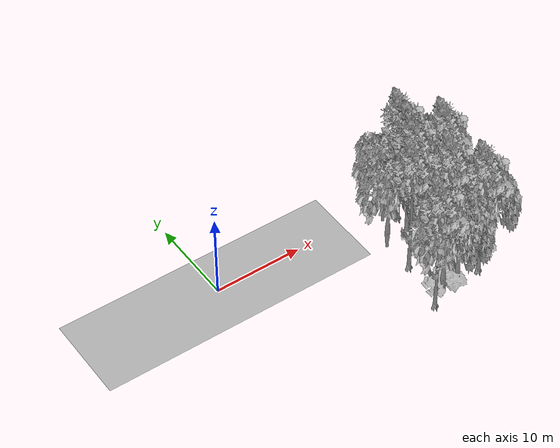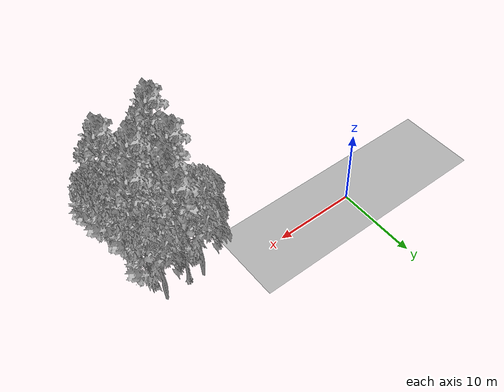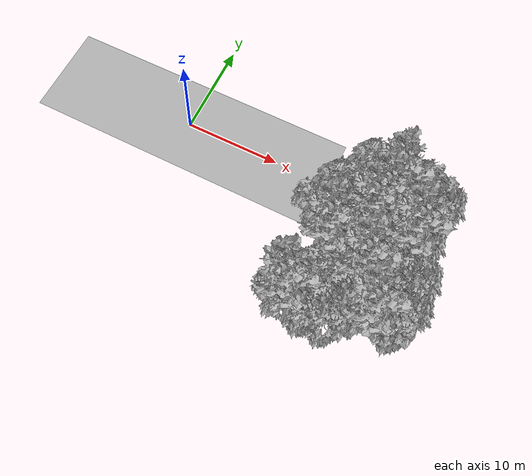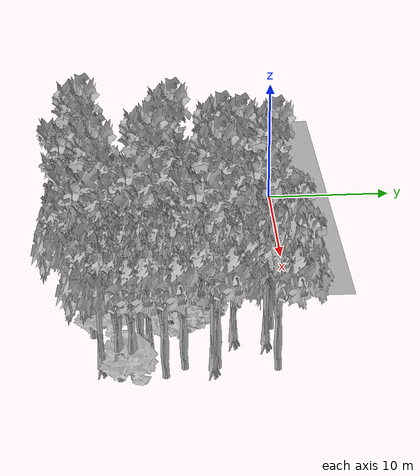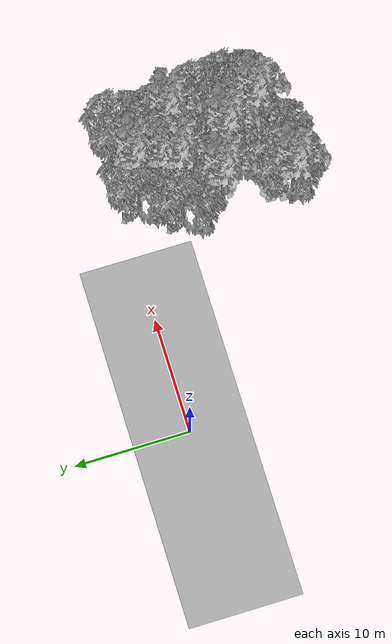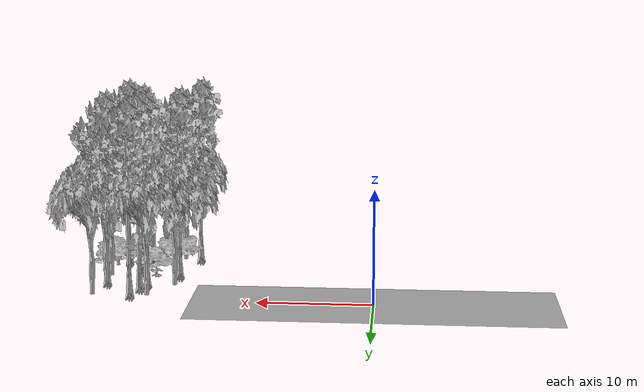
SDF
<sdf version="1.7">
 <world name="default">
  <model name="ground_plane">
   <static>1</static>
   <link name="link">
    <collision name="collision">
     <pose>-50 0 0 0 -0 0</pose>
     <geometry><plane><normal>0 0 1</normal><size>100 100</size></plane></geometry>
     <surface><contact><ode><min_depth>0.01</min_depth><max_vel>0</max_vel></ode></contact></surface>
    </collision>
    <visual name="grass">
     <cast_shadows>0</cast_shadows>
     <geometry>
      <mesh>
       <scale>0.5814285714285714 0.18142857142857144 0.1</scale>
       <uri>file://grass_plane/meshes/grass_plane.dae</uri>
      </mesh>
     </geometry>
    </visual>
   </link>
  </model>
  <model name="Tree 5">
   <static>1</static>
   <pose>19.629208823579546 -1.654639189703154 0 1.57079 -0 0</pose>
   <link name="link">
    <collision name="collision">
     <geometry><mesh><scale>3.5 5 3.5</scale><uri>model://tree_2/meshes/tree_2.obj</uri></mesh></geometry>
    </collision>
    <visual name="visual">
     <geometry><mesh><scale>3.5 5 3.5</scale><uri>model://tree_2/meshes/tree_2.obj</uri></mesh></geometry>
    </visual>
   </link>
  </model>
  <model name="Tree 31">
   <static>1</static>
   <pose>24.900806616224116 -10.793923267823647 0 1.57079 -0 0</pose>
   <link name="link">
    <collision name="collision">
     <geometry><mesh><scale>3.5 5 3.5</scale><uri>model://tree_2/meshes/tree_2.obj</uri></mesh></geometry>
    </collision>
    <visual name="visual">
     <geometry><mesh><scale>3.5 5 3.5</scale><uri>model://tree_2/meshes/tree_2.obj</uri></mesh></geometry>
    </visual>
   </link>
  </model>
  <model name="Tree 41">
   <static>1</static>
   <pose>17.710650653745134 -4.923292377429361 0 1.57079 -0 0</pose>
   <link name="link">
    <collision name="collision">
     <geometry><mesh><scale>3.5 5 3.5</scale><uri>model://tree_2/meshes/tree_2.obj</uri></mesh></geometry>
    </collision>
    <visual name="visual">
     <geometry><mesh><scale>3.5 5 3.5</scale><uri>model://tree_2/meshes/tree_2.obj</uri></mesh></geometry>
    </visual>
   </link>
  </model>
  <model name="Tree 59">
   <static>1</static>
   <pose>18.83686792946277 -13.19572756280619 0 1.57079 -0 0</pose>
   <link name="link">
    <collision name="collision">
     <geometry><mesh><scale>3 2 3</scale><uri>model://tree_3/meshes/tree_3.obj</uri></mesh></geometry>
    </collision>
    <visual name="visual">
     <geometry><mesh><scale>3 2 3</scale><uri>model://tree_3/meshes/tree_3.obj</uri></mesh></geometry>
    </visual>
   </link>
  </model>
  <model name="Tree 142">
   <static>1</static>
   <pose>23.475615986553436 -12.893833826158735 0 1.57079 -0 0</pose>
   <link name="link">
    <collision name="collision">
     <geometry><mesh><scale>3.5 5 3.5</scale><uri>model://tree_9/meshes/tree_9.obj</uri></mesh></geometry>
    </collision>
    <visual name="visual">
     <geometry><mesh><scale>3.5 5 3.5</scale><uri>model://tree_9/meshes/tree_9.obj</uri></mesh></geometry>
    </visual>
   </link>
  </model>
  <model name="Tree 145">
   <static>1</static>
   <pose>24.969309721218835 -11.660806364751668 0 1.57079 -0 0</pose>
   <link name="link">
    <collision name="collision">
     <geometry><mesh><scale>3.5 5 3.5</scale><uri>model://tree_2/meshes/tree_2.obj</uri></mesh></geometry>
    </collision>
    <visual name="visual">
     <geometry><mesh><scale>3.5 5 3.5</scale><uri>model://tree_2/meshes/tree_2.obj</uri></mesh></geometry>
    </visual>
   </link>
  </model>
  <model name="Tree 159">
   <static>1</static>
   <pose>17.929809894789088 -8.438546562303996 0 1.57079 -0 0</pose>
   <link name="link">
    <collision name="collision">
     <geometry><mesh><scale>3.5 5 3.5</scale><uri>model://tree_9/meshes/tree_9.obj</uri></mesh></geometry>
    </collision>
    <visual name="visual">
     <geometry><mesh><scale>3.5 5 3.5</scale><uri>model://tree_9/meshes/tree_9.obj</uri></mesh></geometry>
    </visual>
   </link>
  </model>
  <model name="Tree 174">
   <static>1</static>
   <pose>24.819798299699784 -8.78271700604319 0 1.57079 -0 0</pose>
   <link name="link">
    <collision name="collision">
     <geometry><mesh><scale>3.5 5 3.5</scale><uri>model://tree_2/meshes/tree_2.obj</uri></mesh></geometry>
    </collision>
    <visual name="visual">
     <geometry><mesh><scale>3.5 5 3.5</scale><uri>model://tree_2/meshes/tree_2.obj</uri></mesh></geometry>
    </visual>
   </link>
  </model>
  <model name="Tree 177">
   <static>1</static>
   <pose>21.32296195992629 -2.105413505863602 0 1.57079 -0 0</pose>
   <link name="link">
    <collision name="collision">
     <geometry><mesh><scale>3.5 5 3.5</scale><uri>model://tree_9/meshes/tree_9.obj</uri></mesh></geometry>
    </collision>
    <visual name="visual">
     <geometry><mesh><scale>3.5 5 3.5</scale><uri>model://tree_9/meshes/tree_9.obj</uri></mesh></geometry>
    </visual>
   </link>
  </model>
  <model name="Tree 179">
   <static>1</static>
   <pose>23.958178663350765 -7.566513092920228 0 1.57079 -0 0</pose>
   <link name="link">
    <collision name="collision">
     <geometry><mesh><scale>3.5 5 3.5</scale><uri>model://tree_2/meshes/tree_2.obj</uri></mesh></geometry>
    </collision>
    <visual name="visual">
     <geometry><mesh><scale>3.5 5 3.5</scale><uri>model://tree_2/meshes/tree_2.obj</uri></mesh></geometry>
    </visual>
   </link>
  </model>
  <model name="Tree 199">
   <static>1</static>
   <pose>24.26040960444392 -11.308276166535766 0 1.57079 -0 0</pose>
   <link name="link">
    <collision name="collision">
     <geometry><mesh><scale>3 2 3</scale><uri>model://tree_3/meshes/tree_3.obj</uri></mesh></geometry>
    </collision>
    <visual name="visual">
     <geometry><mesh><scale>3 2 3</scale><uri>model://tree_3/meshes/tree_3.obj</uri></mesh></geometry>
    </visual>
   </link>
  </model>
  <model name="Tree 230">
   <static>1</static>
   <pose>16.820258776103998 -14.178043047341145 0 1.57079 -0 0</pose>
   <link name="link">
    <collision name="collision">
     <geometry><mesh><scale>3.5 5 3.5</scale><uri>model://tree_9/meshes/tree_9.obj</uri></mesh></geometry>
    </collision>
    <visual name="visual">
     <geometry><mesh><scale>3.5 5 3.5</scale><uri>model://tree_9/meshes/tree_9.obj</uri></mesh></geometry>
    </visual>
   </link>
  </model>
  <model name="Tree 236">
   <static>1</static>
   <pose>20.963398827385433 -11.876633095875368 0 1.57079 -0 0</pose>
   <link name="link">
    <collision name="collision">
     <geometry><mesh><scale>3.5 5 3.5</scale><uri>model://tree_2/meshes/tree_2.obj</uri></mesh></geometry>
    </collision>
    <visual name="visual">
     <geometry><mesh><scale>3.5 5 3.5</scale><uri>model://tree_2/meshes/tree_2.obj</uri></mesh></geometry>
    </visual>
   </link>
  </model>
  <model name="Tree 317">
   <static>1</static>
   <pose>20.876398816916904 -10.405026101828106 0 1.57079 -0 0</pose>
   <link name="link">
    <collision name="collision">
     <geometry><mesh><scale>3.5 5 3.5</scale><uri>model://tree_2/meshes/tree_2.obj</uri></mesh></geometry>
    </collision>
    <visual name="visual">
     <geometry><mesh><scale>3.5 5 3.5</scale><uri>model://tree_2/meshes/tree_2.obj</uri></mesh></geometry>
    </visual>
   </link>
  </model>
  <model name="Tree 322">
   <static>1</static>
   <pose>18.07556325661831 -13.612262839764199 0 1.57079 -0 0</pose>
   <link name="link">
    <collision name="collision">
     <geometry><mesh><scale>3.5 5 3.5</scale><uri>model://tree_2/meshes/tree_2.obj</uri></mesh></geometry>
    </collision>
    <visual name="visual">
     <geometry><mesh><scale>3.5 5 3.5</scale><uri>model://tree_2/meshes/tree_2.obj</uri></mesh></geometry>
    </visual>
   </link>
  </model>
  <model name="Tree 398">
   <static>1</static>
   <pose>24.075422070878943 -5.702592048603984 0 1.57079 -0 0</pose>
   <link name="link">
    <collision name="collision">
     <geometry><mesh><scale>3.5 5 3.5</scale><uri>model://tree_9/meshes/tree_9.obj</uri></mesh></geometry>
    </collision>
    <visual name="visual">
     <geometry><mesh><scale>3.5 5 3.5</scale><uri>model://tree_9/meshes/tree_9.obj</uri></mesh></geometry>
    </visual>
   </link>
  </model>
  <model name="Tree 413">
   <static>1</static>
   <pose>19.968332614175424 -13.597303674504587 0 1.57079 -0 0</pose>
   <link name="link">
    <collision name="collision">
     <geometry><mesh><scale>3.5 5 3.5</scale><uri>model://tree_2/meshes/tree_2.obj</uri></mesh></geometry>
    </collision>
    <visual name="visual">
     <geometry><mesh><scale>3.5 5 3.5</scale><uri>model://tree_2/meshes/tree_2.obj</uri></mesh></geometry>
    </visual>
   </link>
  </model>
  <model name="Tree 430">
   <static>1</static>
   <pose>19.983316424415435 -7.807422473485315 0 1.57079 -0 0</pose>
   <link name="link">
    <collision name="collision">
     <geometry><mesh><scale>4 2.5 4</scale><uri>model://tree_1/meshes/tree_1.obj</uri></mesh></geometry>
    </collision>
    <visual name="visual">
     <geometry><mesh><scale>4 2.5 4</scale><uri>model://tree_1/meshes/tree_1.obj</uri></mesh></geometry>
    </visual>
   </link>
  </model>
  <model name="Tree 437">
   <static>1</static>
   <pose>20.84137935603455 -4.240183899628612 0 1.57079 -0 0</pose>
   <link name="link">
    <collision name="collision">
     <geometry><mesh><scale>3.5 5 3.5</scale><uri>model://tree_9/meshes/tree_9.obj</uri></mesh></geometry>
    </collision>
    <visual name="visual">
     <geometry><mesh><scale>3.5 5 3.5</scale><uri>model://tree_9/meshes/tree_9.obj</uri></mesh></geometry>
    </visual>
   </link>
  </model>
  <model name="Tree 477">
   <static>1</static>
   <pose>20.382130221264532 -5.41631261368012 0 1.57079 -0 0</pose>
   <link name="link">
    <collision name="collision">
     <geometry><mesh><scale>3.5 5 3.5</scale><uri>model://tree_9/meshes/tree_9.obj</uri></mesh></geometry>
    </collision>
    <visual name="visual">
     <geometry><mesh><scale>3.5 5 3.5</scale><uri>model://tree_9/meshes/tree_9.obj</uri></mesh></geometry>
    </visual>
   </link>
  </model>
  <model name="Tree 482">
   <static>1</static>
   <pose>23.992652568159627 -5.427741519410244 0 1.57079 -0 0</pose>
   <link name="link">
    <collision name="collision">
     <geometry><mesh><scale>3.5 5 3.5</scale><uri>model://tree_2/meshes/tree_2.obj</uri></mesh></geometry>
    </collision>
    <visual name="visual">
     <geometry><mesh><scale>3.5 5 3.5</scale><uri>model://tree_2/meshes/tree_2.obj</uri></mesh></geometry>
    </visual>
   </link>
  </model>
  <model name="Tree 492">
   <static>1</static>
   <pose>24.39900872460133 -1.571903173254153 0 1.57079 -0 0</pose>
   <link name="link">
    <collision name="collision">
     <geometry><mesh><scale>3.5 5 3.5</scale><uri>model://tree_2/meshes/tree_2.obj</uri></mesh></geometry>
    </collision>
    <visual name="visual">
     <geometry><mesh><scale>3.5 5 3.5</scale><uri>model://tree_2/meshes/tree_2.obj</uri></mesh></geometry>
    </visual>
   </link>
  </model>
  <model name="Tree 505">
   <static>1</static>
   <pose>21.55332814371826 -9.838341707661305 0 1.57079 -0 0</pose>
   <link name="link">
    <collision name="collision">
     <geometry><mesh><scale>3.5 5 3.5</scale><uri>model://tree_9/meshes/tree_9.obj</uri></mesh></geometry>
    </collision>
    <visual name="visual">
     <geometry><mesh><scale>3.5 5 3.5</scale><uri>model://tree_9/meshes/tree_9.obj</uri></mesh></geometry>
    </visual>
   </link>
  </model>
 </world>
</sdf>
